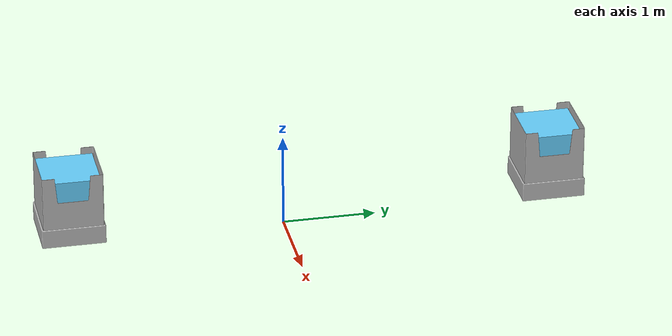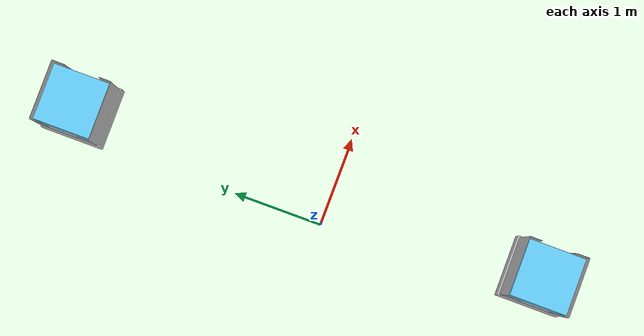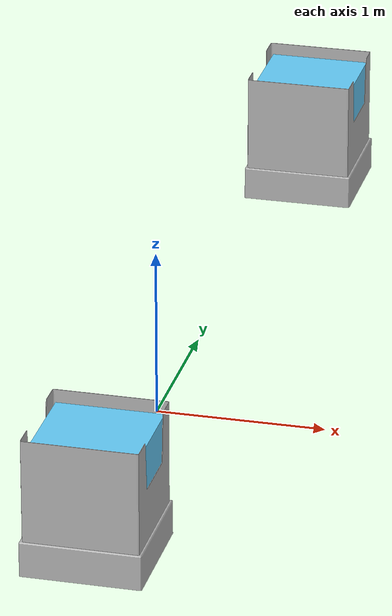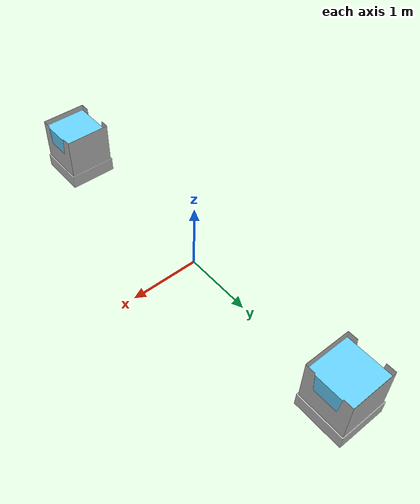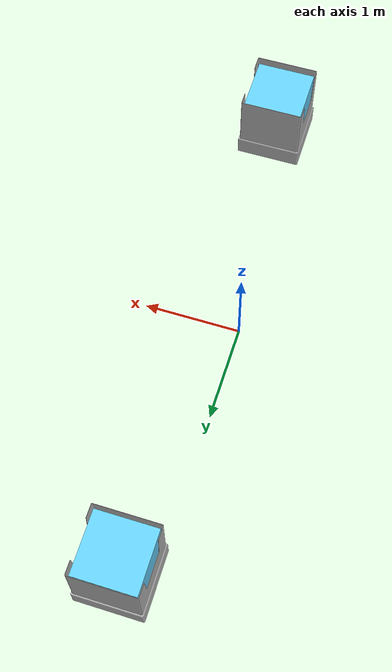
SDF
<sdf version="1.5">
 <world name="world">
  <scene>
   <shadows>0</shadows>
   <grid>0</grid>
   <origin_visual>0</origin_visual>
   <ambient>0.25 0.25 0.25 1</ambient>
   <background>0.5 0.5 0.5 1</background>
  </scene>
  <light type="directional" name="sun">
   <pose>0 0 10 0 0 0</pose>
   <diffuse>0.8 0.8 0.8 1</diffuse>
   <specular>0.2 0.2 0.2 1</specular>
   <attenuation>
    <range>1000</range>
    <constant>0.9</constant>
    <linear>0.01</linear>
    <quadratic>0.001</quadratic>
   </attenuation>
   <direction>-0.5 0.1 -0.9</direction>
  </light>
  <include><name>bin1</name><uri>model://parts_bin</uri><pose>0.27 -2.325 0.3 0 0 1.57</pose></include>
  <include><name>bin2</name><uri>model://parts_bin</uri><pose>0.27 2.8 0.3 0.0 0 -1.57</pose></include>
  <plugin name="task_manager" filename="libTaskManagerPlugin.so"/>
 </world>
</sdf>

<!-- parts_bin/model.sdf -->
<sdf version="1.6">
  <model name="parts_bin">
    <static>true</static>
    <link name="link">
      <visual name="exterior_visual">
        <geometry>
          <mesh>
            <uri>model://parts_bin/meshes/bin_exterior.dae</uri>
          </mesh>
        </geometry>
      </visual>

      <visual name="interior_visual">
        <geometry>
          <mesh>
            <uri>model://parts_bin/meshes/bin_interior.stl</uri>
          </mesh>
        </geometry>
        <material>
          <ambient>0.4 0.82 1.0 1.0</ambient>
          <diffuse>0.4 0.82 1.0 1.0</diffuse>
        </material>
      </visual>

      <collision name="interior_collision">
        <geometry>
          <mesh>
            <uri>model://parts_bin/meshes/bin_interior.stl</uri>
          </mesh>
        </geometry>
      </collision>

      <collision name="exterior_collision">
        <geometry>
          <mesh>
            <uri>model://parts_bin/meshes/bin_exterior.stl</uri>
          </mesh>
        </geometry>
      </collision>

    </link>
  </model>
</sdf>
